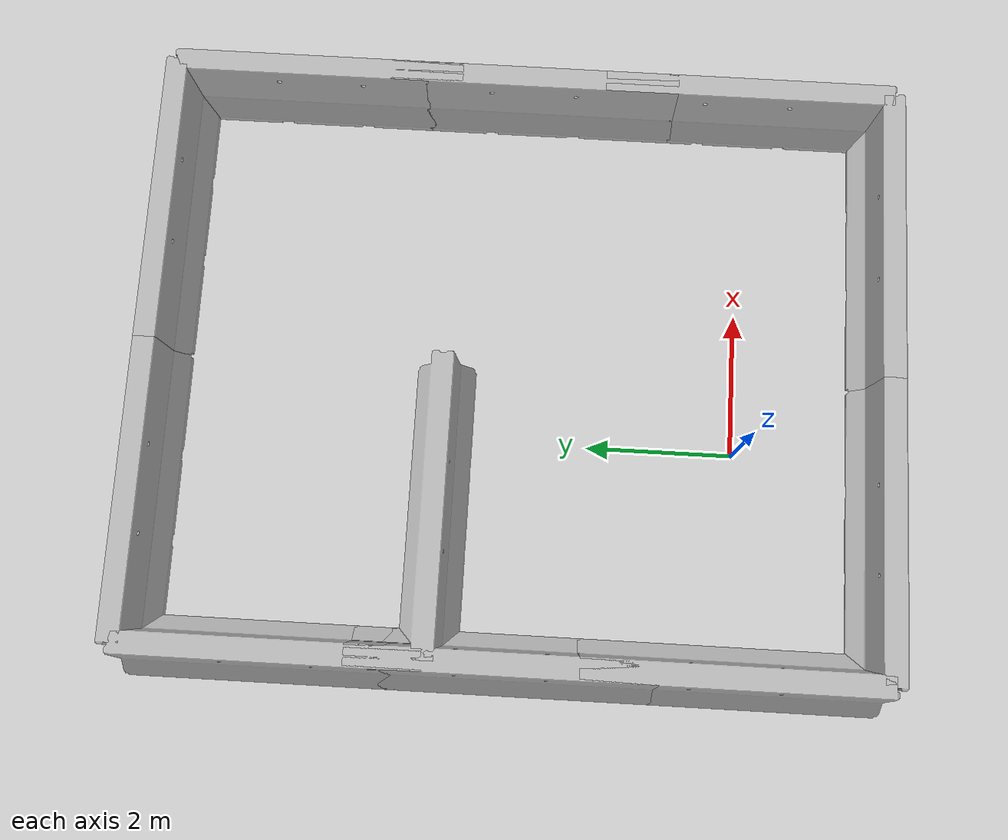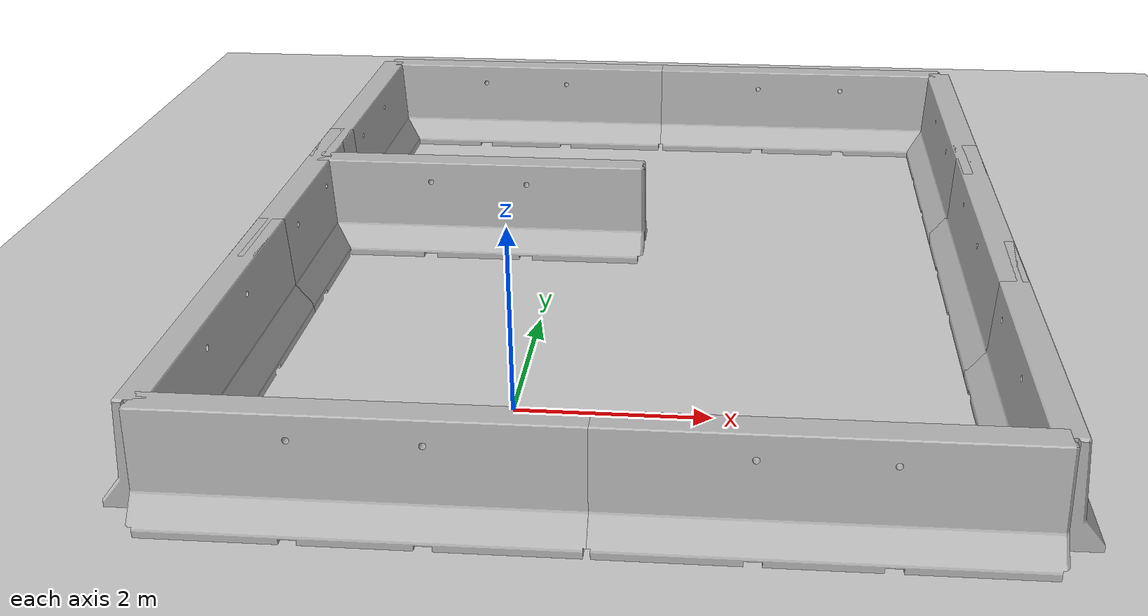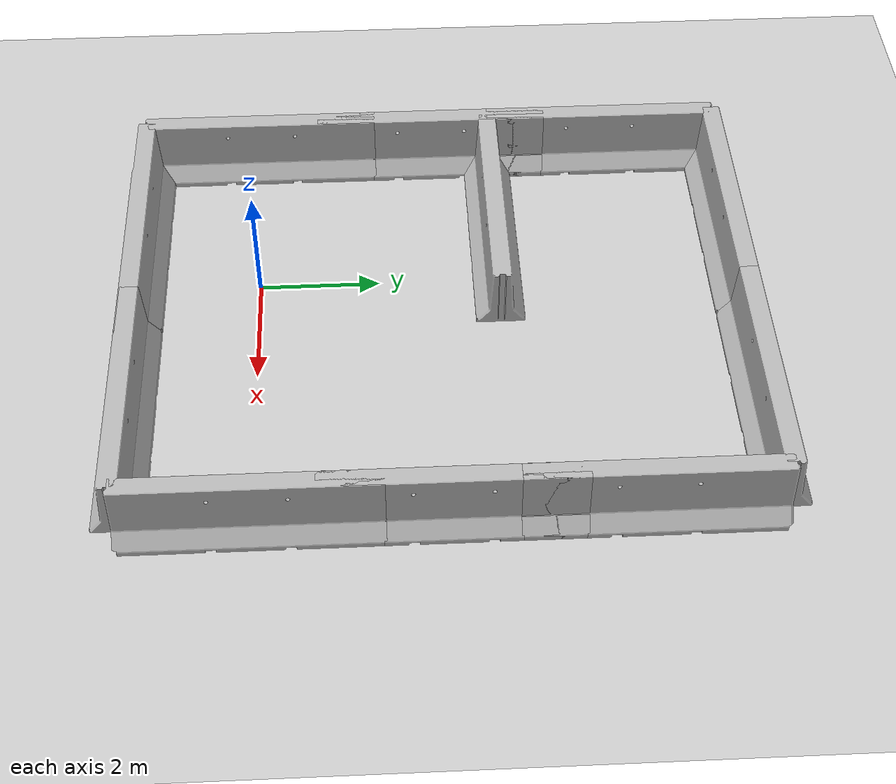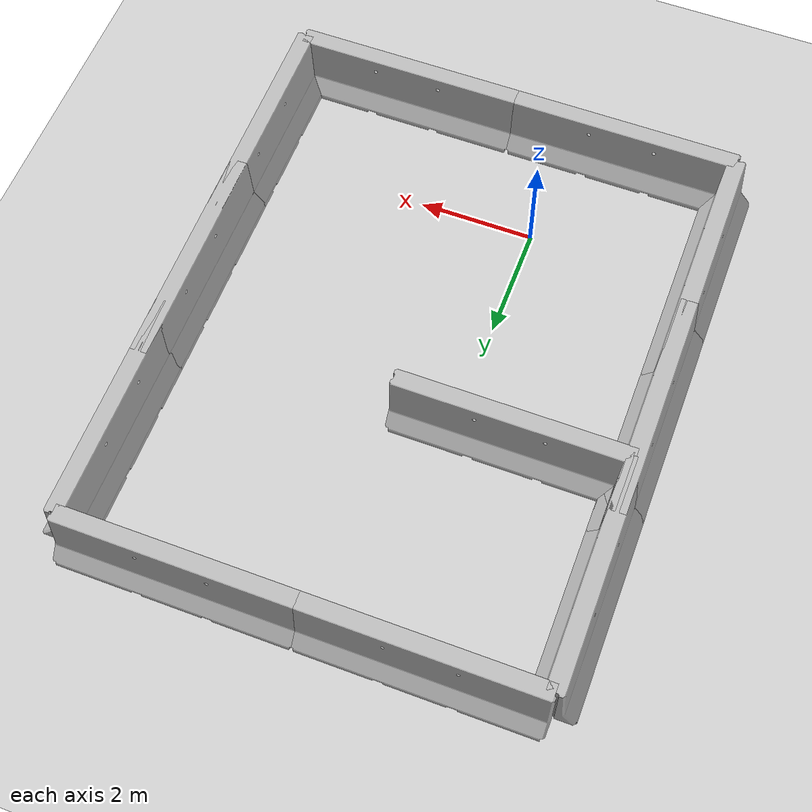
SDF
<sdf version="1.4">
 <world name="default">
  <light name="sun" type="directional">
   <pose>0 0 10 0 -0 0</pose>
   <diffuse>0.8 0.8 0.8 1</diffuse>
   <specular>0.2 0.2 0.2 1</specular>
   <attenuation>
    <range>1000</range>
    <constant>0.9</constant>
    <linear>0.01</linear>
    <quadratic>0.001</quadratic>
   </attenuation>
   <direction>-0.5 0.1 -0.9</direction>
  </light>
  <model name="ground_plane">
   <static>1</static>
   <link name="link">
    <collision name="collision">
     <geometry><plane><normal>0 0 1</normal><size>100 100</size></plane></geometry>
     <surface><friction><ode><mu>100</mu><mu2>50</mu2></ode></friction></surface>
    </collision>
    <visual name="visual">
     <cast_shadows>0</cast_shadows>
     <geometry><plane><normal>0 0 1</normal><size>100 100</size></plane></geometry>
     <material>
      <script><uri>file://media/materials/scripts/gazebo.material</uri><name>Gazebo/Grey</name></script>
     </material>
    </visual>
    <velocity_decay><linear>0</linear><angular>0</angular></velocity_decay>
   </link>
  </model>
  <physics type="ode">
   <max_step_size>0.001</max_step_size>
   <real_time_factor>1</real_time_factor>
   <real_time_update_rate>1000</real_time_update_rate>
   <gravity>0 0 -9.8</gravity>
  </physics>
  <scene><ambient>0.4 0.4 0.4 1</ambient><background>0.7 0.7 0.7 1</background><shadows>1</shadows></scene>
  <spherical_coordinates>
   <surface_model>EARTH_WGS84</surface_model>
   <latitude_deg>0</latitude_deg>
   <longitude_deg>0</longitude_deg>
   <elevation>0</elevation>
   <heading_deg>0</heading_deg>
  </spherical_coordinates>
  <model name="jersey_barrier">
   <static>1</static>
   <link name="link">
    <visual name="visual">
     <geometry><mesh><uri>model://jersey_barrier/meshes/jersey_barrier.dae</uri></mesh></geometry>
    </visual>
    <collision name="upright">
     <pose>0 0 0.5715 0 -0 0</pose>
     <geometry><box><size>4.06542 0.3063 1.143</size></box></geometry>
    </collision>
    <collision name="base">
     <pose>0 0 0.032258 0 -0 0</pose>
     <geometry><box><size>4.06542 0.8107 0.064516</size></box></geometry>
    </collision>
    <collision name="base2">
     <pose>0 0 0.1 0 -0 0</pose>
     <geometry><box><size>4.06542 0.65 0.1</size></box></geometry>
    </collision>
    <collision name="base3">
     <pose>0 0 0.2 0 -0 0</pose>
     <geometry><box><size>4.06542 0.5 0.1</size></box></geometry>
    </collision>
    <collision name="left-angle">
     <pose>0 -0.224 0.2401 0.9 -0 0</pose>
     <geometry><box><size>4.06542 0.5 0.064516</size></box></geometry>
    </collision>
    <collision name="right-angle">
     <pose>0 0.224 0.2401 -0.9 0 0</pose>
     <geometry><box><size>4.06542 0.5 0.064516</size></box></geometry>
    </collision>
    <velocity_decay><linear>0</linear><angular>0</angular></velocity_decay>
   </link>
   <pose>-1 -2 0 0 -0 0</pose>
  </model>
  <model name="jersey_barrier_0">
   <static>1</static>
   <link name="link">
    <visual name="visual">
     <geometry><mesh><uri>model://jersey_barrier/meshes/jersey_barrier.dae</uri></mesh></geometry>
    </visual>
    <collision name="upright">
     <pose>0 0 0.5715 0 -0 0</pose>
     <geometry><box><size>4.06542 0.3063 1.143</size></box></geometry>
    </collision>
    <collision name="base">
     <pose>0 0 0.032258 0 -0 0</pose>
     <geometry><box><size>4.06542 0.8107 0.064516</size></box></geometry>
    </collision>
    <collision name="base2">
     <pose>0 0 0.1 0 -0 0</pose>
     <geometry><box><size>4.06542 0.65 0.1</size></box></geometry>
    </collision>
    <collision name="base3">
     <pose>0 0 0.2 0 -0 0</pose>
     <geometry><box><size>4.06542 0.5 0.1</size></box></geometry>
    </collision>
    <collision name="left-angle">
     <pose>0 -0.224 0.2401 0.9 -0 0</pose>
     <geometry><box><size>4.06542 0.5 0.064516</size></box></geometry>
    </collision>
    <collision name="right-angle">
     <pose>0 0.224 0.2401 -0.9 0 0</pose>
     <geometry><box><size>4.06542 0.5 0.064516</size></box></geometry>
    </collision>
    <velocity_decay><linear>0</linear><angular>0</angular></velocity_decay>
   </link>
   <pose>-3 0 0 0 0 -1.5708</pose>
  </model>
  <model name="jersey_barrier_1">
   <static>1</static>
   <link name="link">
    <visual name="visual">
     <geometry><mesh><uri>model://jersey_barrier/meshes/jersey_barrier.dae</uri></mesh></geometry>
    </visual>
    <collision name="upright">
     <pose>0 0 0.5715 0 -0 0</pose>
     <geometry><box><size>4.06542 0.3063 1.143</size></box></geometry>
    </collision>
    <collision name="base">
     <pose>0 0 0.032258 0 -0 0</pose>
     <geometry><box><size>4.06542 0.8107 0.064516</size></box></geometry>
    </collision>
    <collision name="base2">
     <pose>0 0 0.1 0 -0 0</pose>
     <geometry><box><size>4.06542 0.65 0.1</size></box></geometry>
    </collision>
    <collision name="base3">
     <pose>0 0 0.2 0 -0 0</pose>
     <geometry><box><size>4.06542 0.5 0.1</size></box></geometry>
    </collision>
    <collision name="left-angle">
     <pose>0 -0.224 0.2401 0.9 -0 0</pose>
     <geometry><box><size>4.06542 0.5 0.064516</size></box></geometry>
    </collision>
    <collision name="right-angle">
     <pose>0 0.224 0.2401 -0.9 0 0</pose>
     <geometry><box><size>4.06542 0.5 0.064516</size></box></geometry>
    </collision>
    <velocity_decay><linear>0</linear><angular>0</angular></velocity_decay>
   </link>
   <pose>-3 6 0 0 -0 1.5708</pose>
  </model>
  <model name="jersey_barrier_2">
   <static>1</static>
   <link name="link">
    <visual name="visual">
     <geometry><mesh><uri>model://jersey_barrier/meshes/jersey_barrier.dae</uri></mesh></geometry>
    </visual>
    <collision name="upright">
     <pose>0 0 0.5715 0 -0 0</pose>
     <geometry><box><size>4.06542 0.3063 1.143</size></box></geometry>
    </collision>
    <collision name="base">
     <pose>0 0 0.032258 0 -0 0</pose>
     <geometry><box><size>4.06542 0.8107 0.064516</size></box></geometry>
    </collision>
    <collision name="base2">
     <pose>0 0 0.1 0 -0 0</pose>
     <geometry><box><size>4.06542 0.65 0.1</size></box></geometry>
    </collision>
    <collision name="base3">
     <pose>0 0 0.2 0 -0 0</pose>
     <geometry><box><size>4.06542 0.5 0.1</size></box></geometry>
    </collision>
    <collision name="left-angle">
     <pose>0 -0.224 0.2401 0.9 -0 0</pose>
     <geometry><box><size>4.06542 0.5 0.064516</size></box></geometry>
    </collision>
    <collision name="right-angle">
     <pose>0 0.224 0.2401 -0.9 0 0</pose>
     <geometry><box><size>4.06542 0.5 0.064516</size></box></geometry>
    </collision>
    <velocity_decay><linear>0</linear><angular>0</angular></velocity_decay>
   </link>
   <pose>-1 4 0 0 -0 0</pose>
  </model>
  <model name="jersey_barrier_3">
   <static>1</static>
   <link name="link">
    <visual name="visual">
     <geometry><mesh><uri>model://jersey_barrier/meshes/jersey_barrier.dae</uri></mesh></geometry>
    </visual>
    <collision name="upright">
     <pose>0 0 0.5715 0 -0 0</pose>
     <geometry><box><size>4.06542 0.3063 1.143</size></box></geometry>
    </collision>
    <collision name="base">
     <pose>0 0 0.032258 0 -0 0</pose>
     <geometry><box><size>4.06542 0.8107 0.064516</size></box></geometry>
    </collision>
    <collision name="base2">
     <pose>0 0 0.1 0 -0 0</pose>
     <geometry><box><size>4.06542 0.65 0.1</size></box></geometry>
    </collision>
    <collision name="base3">
     <pose>0 0 0.2 0 -0 0</pose>
     <geometry><box><size>4.06542 0.5 0.1</size></box></geometry>
    </collision>
    <collision name="left-angle">
     <pose>0 -0.224 0.2401 0.9 -0 0</pose>
     <geometry><box><size>4.06542 0.5 0.064516</size></box></geometry>
    </collision>
    <collision name="right-angle">
     <pose>0 0.224 0.2401 -0.9 0 0</pose>
     <geometry><box><size>4.06542 0.5 0.064516</size></box></geometry>
    </collision>
    <velocity_decay><linear>0</linear><angular>0</angular></velocity_decay>
   </link>
   <pose>-1 8 0 0 -0 0</pose>
  </model>
  <model name="jersey_barrier_4">
   <static>1</static>
   <link name="link">
    <visual name="visual">
     <geometry><mesh><uri>model://jersey_barrier/meshes/jersey_barrier.dae</uri></mesh></geometry>
    </visual>
    <collision name="upright">
     <pose>0 0 0.5715 0 -0 0</pose>
     <geometry><box><size>4.06542 0.3063 1.143</size></box></geometry>
    </collision>
    <collision name="base">
     <pose>0 0 0.032258 0 -0 0</pose>
     <geometry><box><size>4.06542 0.8107 0.064516</size></box></geometry>
    </collision>
    <collision name="base2">
     <pose>0 0 0.1 0 -0 0</pose>
     <geometry><box><size>4.06542 0.65 0.1</size></box></geometry>
    </collision>
    <collision name="base3">
     <pose>0 0 0.2 0 -0 0</pose>
     <geometry><box><size>4.06542 0.5 0.1</size></box></geometry>
    </collision>
    <collision name="left-angle">
     <pose>0 -0.224 0.2401 0.9 -0 0</pose>
     <geometry><box><size>4.06542 0.5 0.064516</size></box></geometry>
    </collision>
    <collision name="right-angle">
     <pose>0 0.224 0.2401 -0.9 0 0</pose>
     <geometry><box><size>4.06542 0.5 0.064516</size></box></geometry>
    </collision>
    <velocity_decay><linear>0</linear><angular>0</angular></velocity_decay>
   </link>
   <pose>3 -2 0 0 -0 0</pose>
  </model>
  <model name="jersey_barrier_6">
   <static>1</static>
   <link name="link">
    <visual name="visual">
     <geometry><mesh><uri>model://jersey_barrier/meshes/jersey_barrier.dae</uri></mesh></geometry>
    </visual>
    <collision name="upright">
     <pose>0 0 0.5715 0 -0 0</pose>
     <geometry><box><size>4.06542 0.3063 1.143</size></box></geometry>
    </collision>
    <collision name="base">
     <pose>0 0 0.032258 0 -0 0</pose>
     <geometry><box><size>4.06542 0.8107 0.064516</size></box></geometry>
    </collision>
    <collision name="base2">
     <pose>0 0 0.1 0 -0 0</pose>
     <geometry><box><size>4.06542 0.65 0.1</size></box></geometry>
    </collision>
    <collision name="base3">
     <pose>0 0 0.2 0 -0 0</pose>
     <geometry><box><size>4.06542 0.5 0.1</size></box></geometry>
    </collision>
    <collision name="left-angle">
     <pose>0 -0.224 0.2401 0.9 -0 0</pose>
     <geometry><box><size>4.06542 0.5 0.064516</size></box></geometry>
    </collision>
    <collision name="right-angle">
     <pose>0 0.224 0.2401 -0.9 0 0</pose>
     <geometry><box><size>4.06542 0.5 0.064516</size></box></geometry>
    </collision>
    <velocity_decay><linear>0</linear><angular>0</angular></velocity_decay>
   </link>
   <pose>3 8 0 0 -0 0</pose>
  </model>
  <model name="jersey_barrier_7">
   <static>1</static>
   <link name="link">
    <visual name="visual">
     <geometry><mesh><uri>model://jersey_barrier/meshes/jersey_barrier.dae</uri></mesh></geometry>
    </visual>
    <collision name="upright">
     <pose>0 0 0.5715 0 -0 0</pose>
     <geometry><box><size>4.06542 0.3063 1.143</size></box></geometry>
    </collision>
    <collision name="base">
     <pose>0 0 0.032258 0 -0 0</pose>
     <geometry><box><size>4.06542 0.8107 0.064516</size></box></geometry>
    </collision>
    <collision name="base2">
     <pose>0 0 0.1 0 -0 0</pose>
     <geometry><box><size>4.06542 0.65 0.1</size></box></geometry>
    </collision>
    <collision name="base3">
     <pose>0 0 0.2 0 -0 0</pose>
     <geometry><box><size>4.06542 0.5 0.1</size></box></geometry>
    </collision>
    <collision name="left-angle">
     <pose>0 -0.224 0.2401 0.9 -0 0</pose>
     <geometry><box><size>4.06542 0.5 0.064516</size></box></geometry>
    </collision>
    <collision name="right-angle">
     <pose>0 0.224 0.2401 -0.9 0 0</pose>
     <geometry><box><size>4.06542 0.5 0.064516</size></box></geometry>
    </collision>
    <velocity_decay><linear>0</linear><angular>0</angular></velocity_decay>
   </link>
   <pose>5 0 0 0 0 -1.5708</pose>
  </model>
  <model name="jersey_barrier_8">
   <static>1</static>
   <link name="link">
    <visual name="visual">
     <geometry><mesh><uri>model://jersey_barrier/meshes/jersey_barrier.dae</uri></mesh></geometry>
    </visual>
    <collision name="upright">
     <pose>0 0 0.5715 0 -0 0</pose>
     <geometry><box><size>4.06542 0.3063 1.143</size></box></geometry>
    </collision>
    <collision name="base">
     <pose>0 0 0.032258 0 -0 0</pose>
     <geometry><box><size>4.06542 0.8107 0.064516</size></box></geometry>
    </collision>
    <collision name="base2">
     <pose>0 0 0.1 0 -0 0</pose>
     <geometry><box><size>4.06542 0.65 0.1</size></box></geometry>
    </collision>
    <collision name="base3">
     <pose>0 0 0.2 0 -0 0</pose>
     <geometry><box><size>4.06542 0.5 0.1</size></box></geometry>
    </collision>
    <collision name="left-angle">
     <pose>0 -0.224 0.2401 0.9 -0 0</pose>
     <geometry><box><size>4.06542 0.5 0.064516</size></box></geometry>
    </collision>
    <collision name="right-angle">
     <pose>0 0.224 0.2401 -0.9 0 0</pose>
     <geometry><box><size>4.06542 0.5 0.064516</size></box></geometry>
    </collision>
    <velocity_decay><linear>0</linear><angular>0</angular></velocity_decay>
   </link>
   <pose>5 6 0 0 -0 1.5708</pose>
  </model>
  <model name="jersey_barrier_5">
   <static>1</static>
   <link name="link">
    <visual name="visual">
     <geometry><mesh><uri>model://jersey_barrier/meshes/jersey_barrier.dae</uri></mesh></geometry>
    </visual>
    <collision name="upright">
     <pose>0 0 0.5715 0 -0 0</pose>
     <geometry><box><size>4.06542 0.3063 1.143</size></box></geometry>
    </collision>
    <collision name="base">
     <pose>0 0 0.032258 0 -0 0</pose>
     <geometry><box><size>4.06542 0.8107 0.064516</size></box></geometry>
    </collision>
    <collision name="base2">
     <pose>0 0 0.1 0 -0 0</pose>
     <geometry><box><size>4.06542 0.65 0.1</size></box></geometry>
    </collision>
    <collision name="base3">
     <pose>0 0 0.2 0 -0 0</pose>
     <geometry><box><size>4.06542 0.5 0.1</size></box></geometry>
    </collision>
    <collision name="left-angle">
     <pose>0 -0.224 0.2401 0.9 -0 0</pose>
     <geometry><box><size>4.06542 0.5 0.064516</size></box></geometry>
    </collision>
    <collision name="right-angle">
     <pose>0 0.224 0.2401 -0.9 0 0</pose>
     <geometry><box><size>4.06542 0.5 0.064516</size></box></geometry>
    </collision>
    <velocity_decay><linear>0</linear><angular>0</angular></velocity_decay>
   </link>
   <pose>-3 3 0 0 0 -1.5708</pose>
  </model>
  <model name="jersey_barrier_9">
   <static>1</static>
   <link name="link">
    <visual name="visual">
     <geometry><mesh><uri>model://jersey_barrier/meshes/jersey_barrier.dae</uri></mesh></geometry>
    </visual>
    <collision name="upright">
     <pose>0 0 0.5715 0 -0 0</pose>
     <geometry><box><size>4.06542 0.3063 1.143</size></box></geometry>
    </collision>
    <collision name="base">
     <pose>0 0 0.032258 0 -0 0</pose>
     <geometry><box><size>4.06542 0.8107 0.064516</size></box></geometry>
    </collision>
    <collision name="base2">
     <pose>0 0 0.1 0 -0 0</pose>
     <geometry><box><size>4.06542 0.65 0.1</size></box></geometry>
    </collision>
    <collision name="base3">
     <pose>0 0 0.2 0 -0 0</pose>
     <geometry><box><size>4.06542 0.5 0.1</size></box></geometry>
    </collision>
    <collision name="left-angle">
     <pose>0 -0.224 0.2401 0.9 -0 0</pose>
     <geometry><box><size>4.06542 0.5 0.064516</size></box></geometry>
    </collision>
    <collision name="right-angle">
     <pose>0 0.224 0.2401 -0.9 0 0</pose>
     <geometry><box><size>4.06542 0.5 0.064516</size></box></geometry>
    </collision>
    <velocity_decay><linear>0</linear><angular>0</angular></velocity_decay>
   </link>
   <pose>5 3 0 0 0 -1.5708</pose>
  </model>
 </world>
</sdf>
